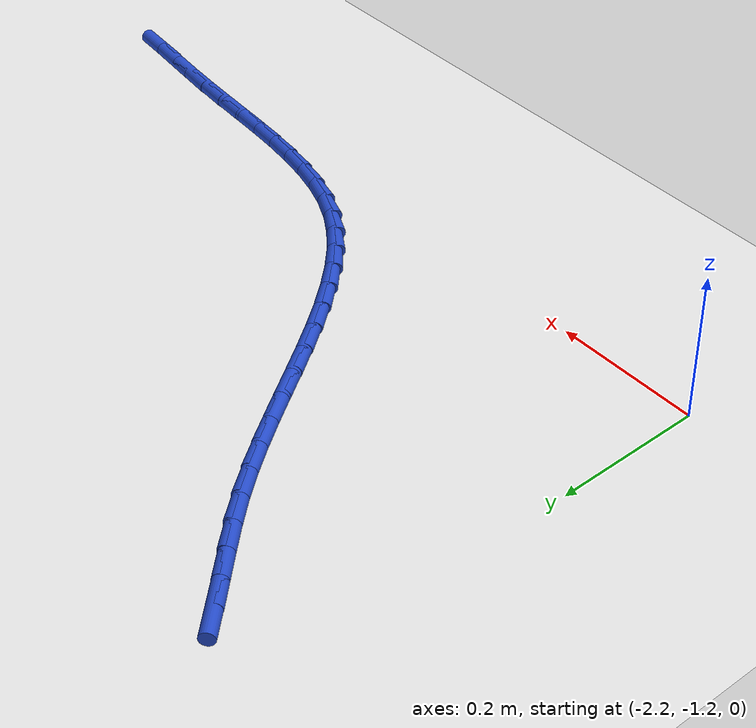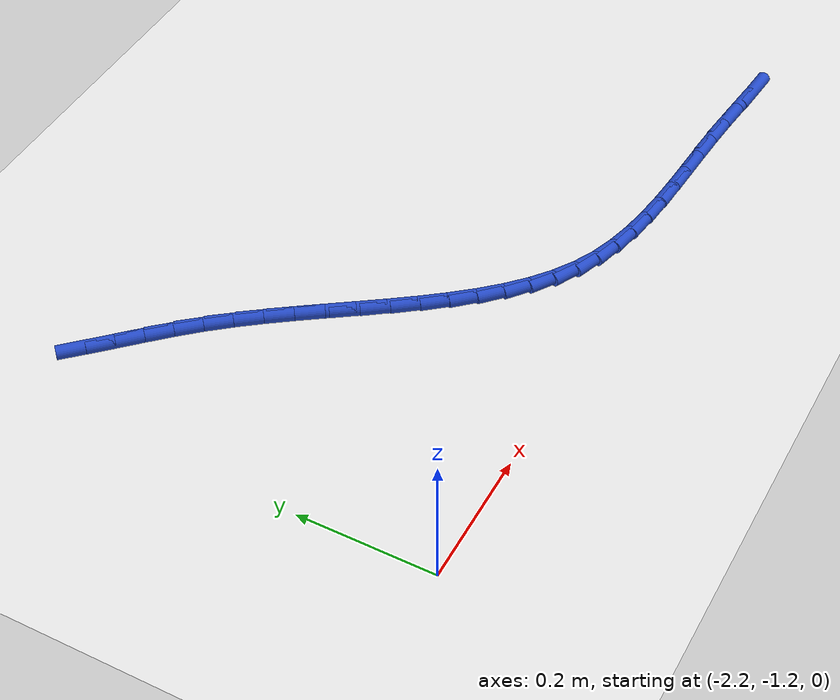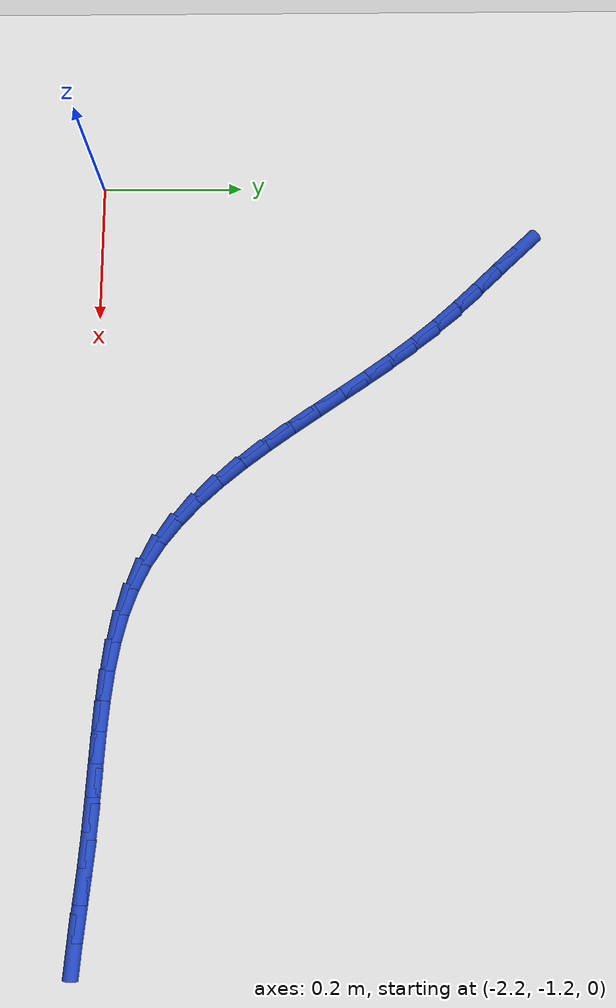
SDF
<sdf version="1.6">
 <world name="default">
  <model name="ground_plane">
   <static>1</static>
   <link name="link">
    <collision name="collision">
     <geometry><plane><normal>0 0 1</normal><size>100 100</size></plane></geometry>
     <surface><friction><ode><mu>100</mu><mu2>50</mu2></ode></friction></surface>
    </collision>
    <visual name="visual">
     <cast_shadows>0</cast_shadows>
     <geometry><plane><normal>0 0 1</normal><size>100 100</size></plane></geometry>
     <material>
      <script><uri>file://media/materials/scripts/gazebo.material</uri><name>Gazebo/WhiteGlow</name></script>
     </material>
    </visual>
   </link>
  </model>
  <model name="line">
   <link name="link_105">
    <pose>-2.0908972500763414 -0.6057512997475669 0.01 0 1.57 -0.8112300291535598</pose>
    <collision name="collision">
     <geometry><cylinder><radius>0.01</radius><length>0.08</length></cylinder></geometry>
    </collision>
    <visual name="visual">
     <material>
      <script><name>Gazebo/Blue</name><uri>file://media/materials/scripts/gazebo.material</uri></script>
     </material>
     <geometry><cylinder><radius>0.01</radius><length>0.08</length></cylinder></geometry>
    </visual>
   </link>
   <link name="link_106">
    <pose>-2.063376090027967 -0.6347323418300238 0.01 0 1.57 -0.8012912935177922</pose>
    <collision name="collision">
     <geometry><cylinder><radius>0.01</radius><length>0.08</length></cylinder></geometry>
    </collision>
    <visual name="visual">
     <material>
      <script><name>Gazebo/Blue</name><uri>file://media/materials/scripts/gazebo.material</uri></script>
     </material>
     <geometry><cylinder><radius>0.01</radius><length>0.08</length></cylinder></geometry>
    </visual>
   </link>
   <link name="link_107">
    <pose>-2.035360830373688 -0.66365256064844 0.01 0 1.57 -0.8117564498503885</pose>
    <collision name="collision">
     <geometry><cylinder><radius>0.01</radius><length>0.08</length></cylinder></geometry>
    </collision>
    <visual name="visual">
     <material>
      <script><name>Gazebo/Blue</name><uri>file://media/materials/scripts/gazebo.material</uri></script>
     </material>
     <geometry><cylinder><radius>0.01</radius><length>0.08</length></cylinder></geometry>
    </visual>
   </link>
   <link name="link_108">
    <pose>-2.0074033682710235 -0.6931241035731239 0.01 0 1.57 -0.8420310426290951</pose>
    <collision name="collision">
     <geometry><cylinder><radius>0.01</radius><length>0.08</length></cylinder></geometry>
    </collision>
    <visual name="visual">
     <material>
      <script><name>Gazebo/Blue</name><uri>file://media/materials/scripts/gazebo.material</uri></script>
     </material>
     <geometry><cylinder><radius>0.01</radius><length>0.08</length></cylinder></geometry>
    </visual>
   </link>
   <link name="link_109">
    <pose>-1.9800556008774914 -0.7237591179743844 0.01 0 1.57 -0.8867970858583996</pose>
    <collision name="collision">
     <geometry><cylinder><radius>0.01</radius><length>0.08</length></cylinder></geometry>
    </collision>
    <visual name="visual">
     <material>
      <script><name>Gazebo/Blue</name><uri>file://media/materials/scripts/gazebo.material</uri></script>
     </material>
     <geometry><cylinder><radius>0.01</radius><length>0.08</length></cylinder></geometry>
    </visual>
   </link>
   <link name="link_110">
    <pose>-1.9537548841078605 -0.7560181665348114 0.01 0 1.57 -0.925205953682807</pose>
    <collision name="collision">
     <geometry><cylinder><radius>0.01</radius><length>0.08</length></cylinder></geometry>
    </collision>
    <visual name="visual">
     <material>
      <script><name>Gazebo/Blue</name><uri>file://media/materials/scripts/gazebo.material</uri></script>
     </material>
     <geometry><cylinder><radius>0.01</radius><length>0.08</length></cylinder></geometry>
    </visual>
   </link>
   <link name="link_111">
    <pose>-1.9284108943409997 -0.7896634771211576 0.01 0 1.57 -0.9520745155772437</pose>
    <collision name="collision">
     <geometry><cylinder><radius>0.01</radius><length>0.08</length></cylinder></geometry>
    </collision>
    <visual name="visual">
     <material>
      <script><name>Gazebo/Blue</name><uri>file://media/materials/scripts/gazebo.material</uri></script>
     </material>
     <geometry><cylinder><radius>0.01</radius><length>0.08</length></cylinder></geometry>
    </visual>
   </link>
   <link name="link_112">
    <pose>-1.9037814509502091 -0.8242563089690158 0.01 0 1.57 -0.9680304342753239</pose>
    <collision name="collision">
     <geometry><cylinder><radius>0.01</radius><length>0.08</length></cylinder></geometry>
    </collision>
    <visual name="visual">
     <material>
      <script><name>Gazebo/Blue</name><uri>file://media/materials/scripts/gazebo.material</uri></script>
     </material>
     <geometry><cylinder><radius>0.01</radius><length>0.08</length></cylinder></geometry>
    </visual>
   </link>
   <link name="link_113">
    <pose>-1.8796243595447646 -0.8593579030985751 0.01 0 1.57 -0.9734204623193966</pose>
    <collision name="collision">
     <geometry><cylinder><radius>0.01</radius><length>0.08</length></cylinder></geometry>
    </collision>
    <visual name="visual">
     <material>
      <script><name>Gazebo/Blue</name><uri>file://media/materials/scripts/gazebo.material</uri></script>
     </material>
     <geometry><cylinder><radius>0.01</radius><length>0.08</length></cylinder></geometry>
    </visual>
   </link>
   <link name="link_114">
    <pose>-1.8556974257339445 -0.8945295005300241 0.01 0 1.57 -0.9682745543254329</pose>
    <collision name="collision">
     <geometry><cylinder><radius>0.01</radius><length>0.08</length></cylinder></geometry>
    </collision>
    <visual name="visual">
     <material>
      <script><name>Gazebo/Blue</name><uri>file://media/materials/scripts/gazebo.material</uri></script>
     </material>
     <geometry><cylinder><radius>0.01</radius><length>0.08</length></cylinder></geometry>
    </visual>
   </link>
   <link name="link_115">
    <pose>-1.8317584551270234 -0.9293323422835527 0.01 0 1.57 -0.9522859446952432</pose>
    <collision name="collision">
     <geometry><cylinder><radius>0.01</radius><length>0.08</length></cylinder></geometry>
    </collision>
    <visual name="visual">
     <material>
      <script><name>Gazebo/Blue</name><uri>file://media/materials/scripts/gazebo.material</uri></script>
     </material>
     <geometry><cylinder><radius>0.01</radius><length>0.08</length></cylinder></geometry>
    </visual>
   </link>
   <link name="link_116">
    <pose>-1.8075652533332809 -0.963327669379348 0.01 0 1.57 -0.9248016290844787</pose>
    <collision name="collision">
     <geometry><cylinder><radius>0.01</radius><length>0.08</length></cylinder></geometry>
    </collision>
    <visual name="visual">
     <material>
      <script><name>Gazebo/Blue</name><uri>file://media/materials/scripts/gazebo.material</uri></script>
     </material>
     <geometry><cylinder><radius>0.01</radius><length>0.08</length></cylinder></geometry>
    </visual>
   </link>
   <link name="link_117">
    <pose>-1.7828756259619927 -0.9960767228375995 0.01 0 1.57 -0.8848310238092505</pose>
    <collision name="collision">
     <geometry><cylinder><radius>0.01</radius><length>0.08</length></cylinder></geometry>
    </collision>
    <visual name="visual">
     <material>
      <script><name>Gazebo/Blue</name><uri>file://media/materials/scripts/gazebo.material</uri></script>
     </material>
     <geometry><cylinder><radius>0.01</radius><length>0.08</length></cylinder></geometry>
    </visual>
   </link>
   <link name="link_118">
    <pose>-1.757447378622435 -1.027140743678496 0.01 0 1.57 -0.8310971277487728</pose>
    <collision name="collision">
     <geometry><cylinder><radius>0.01</radius><length>0.08</length></cylinder></geometry>
    </collision>
    <visual name="visual">
     <material>
      <script><name>Gazebo/Blue</name><uri>file://media/materials/scripts/gazebo.material</uri></script>
     </material>
     <geometry><cylinder><radius>0.01</radius><length>0.08</length></cylinder></geometry>
    </visual>
   </link>
   <link name="link_119">
    <pose>-1.7310383169238863 -1.0560809729222274 0.01 0 1.57 -0.7621770536977609</pose>
    <collision name="collision">
     <geometry><cylinder><radius>0.01</radius><length>0.08</length></cylinder></geometry>
    </collision>
    <visual name="visual">
     <material>
      <script><name>Gazebo/Blue</name><uri>file://media/materials/scripts/gazebo.material</uri></script>
     </material>
     <geometry><cylinder><radius>0.01</radius><length>0.08</length></cylinder></geometry>
    </visual>
   </link>
   <link name="link_120">
    <pose>-1.703406246475622 -1.0824586515889818 0.01 0 1.57 -0.6768027301396479</pose>
    <collision name="collision">
     <geometry><cylinder><radius>0.01</radius><length>0.08</length></cylinder></geometry>
    </collision>
    <visual name="visual">
     <material>
      <script><name>Gazebo/Blue</name><uri>file://media/materials/scripts/gazebo.material</uri></script>
     </material>
     <geometry><cylinder><radius>0.01</radius><length>0.08</length></cylinder></geometry>
    </visual>
   </link>
   <link name="link_121">
    <pose>-1.6743089728869198 -1.1058350206989473 0.01 0 1.57 -0.5743932949277449</pose>
    <collision name="collision">
     <geometry><cylinder><radius>0.01</radius><length>0.08</length></cylinder></geometry>
    </collision>
    <visual name="visual">
     <material>
      <script><name>Gazebo/Blue</name><uri>file://media/materials/scripts/gazebo.material</uri></script>
     </material>
     <geometry><cylinder><radius>0.01</radius><length>0.08</length></cylinder></geometry>
    </visual>
   </link>
   <link name="link_122">
    <pose>-1.643504301767057 -1.125771321272314 0.01 0 1.57 -0.45762023915636185</pose>
    <collision name="collision">
     <geometry><cylinder><radius>0.01</radius><length>0.08</length></cylinder></geometry>
    </collision>
    <visual name="visual">
     <material>
      <script><name>Gazebo/Blue</name><uri>file://media/materials/scripts/gazebo.material</uri></script>
     </material>
     <geometry><cylinder><radius>0.01</radius><length>0.08</length></cylinder></geometry>
    </visual>
   </link>
   <link name="link_123">
    <pose>-1.6107739519585216 -1.141890636737874 0.01 0 1.57 -0.3468805183744202</pose>
    <collision name="collision">
     <geometry><cylinder><radius>0.01</radius><length>0.08</length></cylinder></geometry>
    </collision>
    <visual name="visual">
     <material>
      <script><name>Gazebo/Blue</name><uri>file://media/materials/scripts/gazebo.material</uri></script>
     </material>
     <geometry><cylinder><radius>0.01</radius><length>0.08</length></cylinder></geometry>
    </visual>
   </link>
   <link name="link_124">
    <pose>-1.5761308656827624 -1.1544140211356653 0.01 0 1.57 -0.2547856281966714</pose>
    <collision name="collision">
     <geometry><cylinder><radius>0.01</radius><length>0.08</length></cylinder></geometry>
    </collision>
    <visual name="visual">
     <material>
      <script><name>Gazebo/Blue</name><uri>file://media/materials/scripts/gazebo.material</uri></script>
     </material>
     <geometry><cylinder><radius>0.01</radius><length>0.08</length></cylinder></geometry>
    </visual>
   </link>
   <link name="link_125">
    <pose>-1.5397175920347288 -1.1638977069886132 0.01 0 1.57 -0.18208297598837944</pose>
    <collision name="collision">
     <geometry><cylinder><radius>0.01</radius><length>0.08</length></cylinder></geometry>
    </collision>
    <visual name="visual">
     <material>
      <script><name>Gazebo/Blue</name><uri>file://media/materials/scripts/gazebo.material</uri></script>
     </material>
     <geometry><cylinder><radius>0.01</radius><length>0.08</length></cylinder></geometry>
    </visual>
   </link>
   <link name="link_126">
    <pose>-1.5016781096873115 -1.170901623874847 0.01 0 1.57 -0.12793748427256843</pose>
    <collision name="collision">
     <geometry><cylinder><radius>0.01</radius><length>0.08</length></cylinder></geometry>
    </collision>
    <visual name="visual">
     <material>
      <script><name>Gazebo/Blue</name><uri>file://media/materials/scripts/gazebo.material</uri></script>
     </material>
     <geometry><cylinder><radius>0.01</radius><length>0.08</length></cylinder></geometry>
    </visual>
   </link>
   <link name="link_127">
    <pose>-1.4621563973134042 -1.175985701372496 0.01 0 1.57 -0.0908935249366996</pose>
    <collision name="collision">
     <geometry><cylinder><radius>0.01</radius><length>0.08</length></cylinder></geometry>
    </collision>
    <visual name="visual">
     <material>
      <script><name>Gazebo/Blue</name><uri>file://media/materials/scripts/gazebo.material</uri></script>
     </material>
     <geometry><cylinder><radius>0.01</radius><length>0.08</length></cylinder></geometry>
    </visual>
   </link>
   <link name="link_128">
    <pose>-1.4212964335858973 -1.1797098690596888 0.01 0 1.57 -0.06942197917787529</pose>
    <collision name="collision">
     <geometry><cylinder><radius>0.01</radius><length>0.08</length></cylinder></geometry>
    </collision>
    <visual name="visual">
     <material>
      <script><name>Gazebo/Blue</name><uri>file://media/materials/scripts/gazebo.material</uri></script>
     </material>
     <geometry><cylinder><radius>0.01</radius><length>0.08</length></cylinder></geometry>
    </visual>
   </link>
   <link name="link_129">
    <pose>-1.3792421971776838 -1.1826340565145554 0.01 0 1.57 -0.06219011051190278</pose>
    <collision name="collision">
     <geometry><cylinder><radius>0.01</radius><length>0.08</length></cylinder></geometry>
    </collision>
    <visual name="visual">
     <material>
      <script><name>Gazebo/Blue</name><uri>file://media/materials/scripts/gazebo.material</uri></script>
     </material>
     <geometry><cylinder><radius>0.01</radius><length>0.08</length></cylinder></geometry>
    </visual>
   </link>
   <link name="link_130">
    <pose>-1.336137666761654 -1.1853181933152244 0.01 0 1.57 -0.06815055510977028</pose>
    <collision name="collision">
     <geometry><cylinder><radius>0.01</radius><length>0.08</length></cylinder></geometry>
    </collision>
    <visual name="visual">
     <material>
      <script><name>Gazebo/Blue</name><uri>file://media/materials/scripts/gazebo.material</uri></script>
     </material>
     <geometry><cylinder><radius>0.01</radius><length>0.08</length></cylinder></geometry>
    </visual>
   </link>
   <link name="link_131">
    <pose>-1.2921268210107 -1.1883222090398258 0.01 0 1.57 -0.08640864776833401</pose>
    <collision name="collision">
     <geometry><cylinder><radius>0.01</radius><length>0.08</length></cylinder></geometry>
    </collision>
    <visual name="visual">
     <material>
      <script><name>Gazebo/Blue</name><uri>file://media/materials/scripts/gazebo.material</uri></script>
     </material>
     <geometry><cylinder><radius>0.01</radius><length>0.08</length></cylinder></geometry>
    </visual>
   </link>
   <link name="link_132">
    <pose>-1.2473553041701027 -1.1922005124684993 0.01 0 1.57 -0.10565366189128444</pose>
    <collision name="collision">
     <geometry><cylinder><radius>0.01</radius><length>0.08</length></cylinder></geometry>
    </collision>
    <visual name="visual">
     <material>
      <script><name>Gazebo/Blue</name><uri>file://media/materials/scripts/gazebo.material</uri></script>
     </material>
     <geometry><cylinder><radius>0.01</radius><length>0.08</length></cylinder></geometry>
    </visual>
   </link>
   <link name="link_133">
    <pose>-1.202122666138393 -1.1969973682248882 0.01 0 1.57 -0.10695654452198448</pose>
    <collision name="collision">
     <geometry><cylinder><radius>0.01</radius><length>0.08</length></cylinder></geometry>
    </collision>
    <visual name="visual">
     <material>
      <script><name>Gazebo/Blue</name><uri>file://media/materials/scripts/gazebo.material</uri></script>
     </material>
     <geometry><cylinder><radius>0.01</radius><length>0.08</length></cylinder></geometry>
    </visual>
   </link>
   <link name="link_134">
    <pose>-1.1570046607456397 -1.2018415201658665 0.01 0 1.57 -0.08816947866834898</pose>
    <collision name="collision">
     <geometry><cylinder><radius>0.01</radius><length>0.08</length></cylinder></geometry>
    </collision>
    <visual name="visual">
     <material>
      <script><name>Gazebo/Blue</name><uri>file://media/materials/scripts/gazebo.material</uri></script>
     </material>
     <geometry><cylinder><radius>0.01</radius><length>0.08</length></cylinder></geometry>
    </visual>
   </link>
  </model>
 </world>
</sdf>
